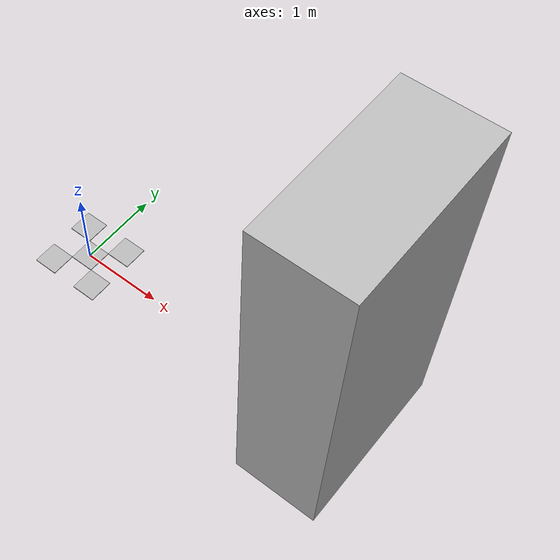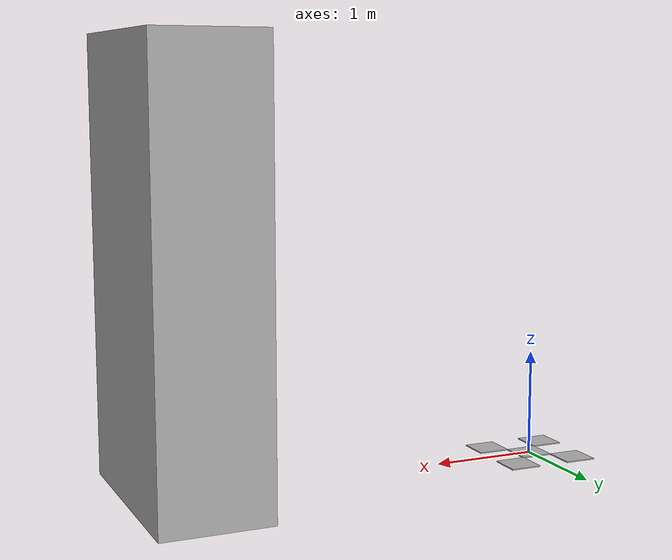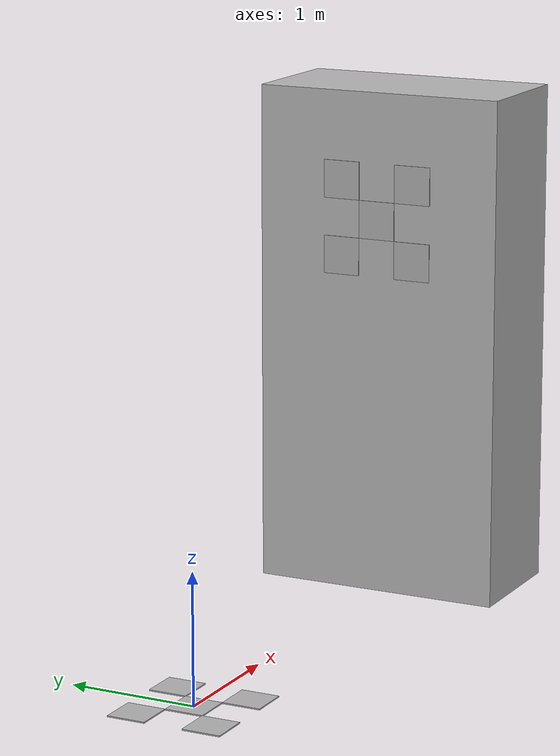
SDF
<?xml version="1.0" ?>
<sdf version="1.4">

	<model name='localization_tags'>

		<static>True</static>

		<link name="tag_0">

			<pose>0 0 0 0 1.5713 1.5713</pose>

			<inertial>
	        	<mass>0.1</mass>

	        	<inertia>
					<ixx>0.0166667</ixx>
					<ixy>0</ixy>
					<ixz>0</ixz>
					<iyy>0.0166667</iyy>
					<iyz>0</iyz>
					<izz>0.0166667</izz>
        		</inertia>

        		<pose frame=''>0 0 0 0 -0 0</pose>
      		</inertial>

			<pose frame=''>0 0 0 0 -0 0</pose>
			<gravity>1</gravity>
			<self_collide>0</self_collide>
			<kinematic>0</kinematic>
			<enable_wind>0</enable_wind>

			<visual name='visual_0'>
				<pose frame=''>0 0 0 0 -0 0</pose>

		        <geometry>
		        	<box>
		        	<size>0.01 0.3 0.3</size>
		        	</box>
		        </geometry>

		        <material>
		        	<lighting>0</lighting>

		        	<script>
		        		<uri>models://media/materials/scripts/Apriltag.material</uri>
		        		<name>Apriltag/id0</name>
		          	</script>

		        	<shader type='vertex'>
		        		<normal_map>__default__</normal_map>
		          	</shader>

		        	<ambient>0.3 0.3 0.3 1</ambient>
		        	<diffuse>0.7 0.7 0.7 1</diffuse>
		        	<specular>0.01 0.01 0.01 1</specular>
		        	<emissive>0 0 0 1</emissive>
		        </material>

		        <transparency>0</transparency>
		        <cast_shadows>1</cast_shadows>
			</visual>

			<collision name='collision_0'>
				<laser_retro>0</laser_retro>
        		<max_contacts>10</max_contacts>
        		<pose frame=''>0 0 0 0 -0 0</pose>

		        <geometry>
		        	<box>
		        		<size>0.01 0.3 0.3</size>
		        	</box>
		        </geometry>

		        <surface>
		        	<friction>
		            	<ode>
		            		<mu>1</mu>
		            		<mu2>1</mu2>
		            		<fdir1>0 0 0</fdir1>
		            		<slip1>0</slip1>
		            		<slip2>0</slip2>
		            	</ode>

		           		<torsional>
		            		<coefficient>1</coefficient>
	            			<patch_radius>0</patch_radius>
	            			<surface_radius>0</surface_radius>
	            			<use_patch_radius>1</use_patch_radius>

	            			<ode>
		                		<slip>0</slip>
		              		</ode>
		            	</torsional>
		          	</friction>

		        	<bounce>
		            	<restitution_coefficient>0</restitution_coefficient>
		            	<threshold>1e+06</threshold>
		        	</bounce>

		        	<contact>
		            	<collide_without_contact>0</collide_without_contact>
		            	<collide_without_contact_bitmask>1</collide_without_contact_bitmask>
		            	<collide_bitmask>1</collide_bitmask>

		            	<ode>
		            		<soft_cfm>0</soft_cfm>
		            		<soft_erp>0.2</soft_erp>
		            		<kp>1e+13</kp>
		            		<kd>1</kd>
		            		<max_vel>0.01</max_vel>
		            		<min_depth>0</min_depth>
		            	</ode>

			            <bullet>
			            	<split_impulse>1</split_impulse>
			            	<split_impulse_penetration_threshold>-0.01</split_impulse_penetration_threshold>
			            	<soft_cfm>0</soft_cfm>
			            	<soft_erp>0.2</soft_erp>
			            	<kp>1e+13</kp>
			            	<kd>1</kd>
			            </bullet>
		        	</contact>
		        </surface>
		    </collision>
		</link>

		<link name="tag_1">

			<pose>0.3 -0.3 0 0 1.5713 1.5713</pose>

			<inertial>
	        	<mass>0.1</mass>

	        	<inertia>
					<ixx>0.0166667</ixx>
					<ixy>0</ixy>
					<ixz>0</ixz>
					<iyy>0.0166667</iyy>
					<iyz>0</iyz>
					<izz>0.0166667</izz>
        		</inertia>

        		<pose frame=''>0 0 0 0 -0 0</pose>
      		</inertial>

			<pose frame=''>0 0 0 0 -0 0</pose>
			<gravity>1</gravity>
			<self_collide>0</self_collide>
			<kinematic>0</kinematic>
			<enable_wind>0</enable_wind>

 			<visual name='visual_1'>
				<pose frame=''>0 0 0 0 -0 0</pose>

		        <geometry>
		        	<box>
		        	<size>0.01 0.3 0.3</size>
		        	</box>
		        </geometry>

		        <material>
		        	<lighting>0</lighting>

		        	<script>
		        		<uri>models://media/materials/scripts/Apriltag.material</uri>
		        		<name>Apriltag/id1</name>
		          	</script>

		        	<shader type='vertex'>
		        		<normal_map>__default__</normal_map>
		          	</shader>

		        	<ambient>0.3 0.3 0.3 1</ambient>
		        	<diffuse>0.7 0.7 0.7 1</diffuse>
		        	<specular>0.01 0.01 0.01 1</specular>
		        	<emissive>0 0 0 1</emissive>
		        </material>

		        <transparency>0</transparency>
		        <cast_shadows>1</cast_shadows>
			</visual>

			<collision name='collision_1'>
				<laser_retro>0</laser_retro>
        		<max_contacts>10</max_contacts>
        		<pose frame=''>0 0 0 0 -0 0</pose>

		        <geometry>
		        	<box>
		        		<size>0.01 0.3 0.3</size>
		        	</box>
		        </geometry>

		        <surface>
		        	<friction>
		            	<ode>
		            		<mu>1</mu>
		            		<mu2>1</mu2>
		            		<fdir1>0 0 0</fdir1>
		            		<slip1>0</slip1>
		            		<slip2>0</slip2>
		            	</ode>

		           		<torsional>
		            		<coefficient>1</coefficient>
	            			<patch_radius>0</patch_radius>
	            			<surface_radius>0</surface_radius>
	            			<use_patch_radius>1</use_patch_radius>

	            			<ode>
		                		<slip>0</slip>
		              		</ode>
		            	</torsional>
		          	</friction>

		        	<bounce>
		            	<restitution_coefficient>0</restitution_coefficient>
		            	<threshold>1e+06</threshold>
		        	</bounce>

		        	<contact>
		            	<collide_without_contact>0</collide_without_contact>
		            	<collide_without_contact_bitmask>1</collide_without_contact_bitmask>
		            	<collide_bitmask>1</collide_bitmask>

		            	<ode>
		            		<soft_cfm>0</soft_cfm>
		            		<soft_erp>0.2</soft_erp>
		            		<kp>1e+13</kp>
		            		<kd>1</kd>
		            		<max_vel>0.01</max_vel>
		            		<min_depth>0</min_depth>
		            	</ode>

			            <bullet>
			            	<split_impulse>1</split_impulse>
			            	<split_impulse_penetration_threshold>-0.01</split_impulse_penetration_threshold>
			            	<soft_cfm>0</soft_cfm>
			            	<soft_erp>0.2</soft_erp>
			            	<kp>1e+13</kp>
			            	<kd>1</kd>
			            </bullet>
		        	</contact>
		        </surface>
		    </collision>
		</link>

		<link name="tag_2">

			<pose>0.3 0.3 0 0 1.5713 1.5713</pose>

			<inertial>
	        	<mass>0.1</mass>

	        	<inertia>
					<ixx>0.0166667</ixx>
					<ixy>0</ixy>
					<ixz>0</ixz>
					<iyy>0.0166667</iyy>
					<iyz>0</iyz>
					<izz>0.0166667</izz>
        		</inertia>

        		<pose frame=''>0 0 0 0 -0 0</pose>
      		</inertial>

			<pose frame=''>0 0 0 0 -0 0</pose>
			<gravity>1</gravity>
			<self_collide>0</self_collide>
			<kinematic>0</kinematic>
			<enable_wind>0</enable_wind>

			<visual name='visual_2'>
				<pose frame=''>0 0 0 0 -0 0</pose>

		        <geometry>
		        	<box>
		        	<size>0.01 0.3 0.3</size>
		        	</box>
		        </geometry>

		        <material>
		        	<lighting>0</lighting>

		        	<script>
		        		<uri>models://media/materials/scripts/Apriltag.material</uri>
		        		<name>Apriltag/id2</name>
		          	</script>

		        	<shader type='vertex'>
		        		<normal_map>__default__</normal_map>
		          	</shader>

		        	<ambient>0.3 0.3 0.3 1</ambient>
		        	<diffuse>0.7 0.7 0.7 1</diffuse>
		        	<specular>0.01 0.01 0.01 1</specular>
		        	<emissive>0 0 0 1</emissive>
		        </material>

		        <transparency>0</transparency>
		        <cast_shadows>1</cast_shadows>
			</visual>

			<collision name='collision_2'>
				<laser_retro>0</laser_retro>
        		<max_contacts>10</max_contacts>
        		<pose frame=''>0 0 0 0 -0 0</pose>

		        <geometry>
		        	<box>
		        		<size>0.01 0.3 0.3</size>
		        	</box>
		        </geometry>

		        <surface>
		        	<friction>
		            	<ode>
		            		<mu>1</mu>
		            		<mu2>1</mu2>
		            		<fdir1>0 0 0</fdir1>
		            		<slip1>0</slip1>
		            		<slip2>0</slip2>
		            	</ode>

		           		<torsional>
		            		<coefficient>1</coefficient>
	            			<patch_radius>0</patch_radius>
	            			<surface_radius>0</surface_radius>
	            			<use_patch_radius>1</use_patch_radius>

	            			<ode>
		                		<slip>0</slip>
		              		</ode>
		            	</torsional>
		          	</friction>

		        	<bounce>
		            	<restitution_coefficient>0</restitution_coefficient>
		            	<threshold>1e+06</threshold>
		        	</bounce>

		        	<contact>
		            	<collide_without_contact>0</collide_without_contact>
		            	<collide_without_contact_bitmask>1</collide_without_contact_bitmask>
		            	<collide_bitmask>1</collide_bitmask>

		            	<ode>
		            		<soft_cfm>0</soft_cfm>
		            		<soft_erp>0.2</soft_erp>
		            		<kp>1e+13</kp>
		            		<kd>1</kd>
		            		<max_vel>0.01</max_vel>
		            		<min_depth>0</min_depth>
		            	</ode>

			            <bullet>
			            	<split_impulse>1</split_impulse>
			            	<split_impulse_penetration_threshold>-0.01</split_impulse_penetration_threshold>
			            	<soft_cfm>0</soft_cfm>
			            	<soft_erp>0.2</soft_erp>
			            	<kp>1e+13</kp>
			            	<kd>1</kd>
			            </bullet>
		        	</contact>
		        </surface>
		    </collision>
		</link>

		<link name="tag_3">

			<pose>-0.3 0.3 0 0 1.5713 1.5713</pose>

			<inertial>
	        	<mass>0.1</mass>

	        	<inertia>
					<ixx>0.0166667</ixx>
					<ixy>0</ixy>
					<ixz>0</ixz>
					<iyy>0.0166667</iyy>
					<iyz>0</iyz>
					<izz>0.0166667</izz>
        		</inertia>

        		<pose frame=''>0 0 0 0 -0 0</pose>
      		</inertial>

			<pose frame=''>0 0 0 0 -0 0</pose>
			<gravity>1</gravity>
			<self_collide>0</self_collide>
			<kinematic>0</kinematic>
			<enable_wind>0</enable_wind>

			<visual name='visual_3'>
				<pose frame=''>0 0 0 0 -0 0</pose>

		        <geometry>
		        	<box>
		        	<size>0.01 0.3 0.3</size>
		        	</box>
		        </geometry>

		        <material>
		        	<lighting>0</lighting>

		        	<script>
		        		<uri>models://media/materials/scripts/Apriltag.material</uri>
		        		<name>Apriltag/id3</name>
		          	</script>

		        	<shader type='vertex'>
		        		<normal_map>__default__</normal_map>
		          	</shader>

		        	<ambient>0.3 0.3 0.3 1</ambient>
		        	<diffuse>0.7 0.7 0.7 1</diffuse>
		        	<specular>0.01 0.01 0.01 1</specular>
		        	<emissive>0 0 0 1</emissive>
		        </material>

		        <transparency>0</transparency>
		        <cast_shadows>1</cast_shadows>
			</visual>

			<collision name='collision_3'>
				<laser_retro>0</laser_retro>
        		<max_contacts>10</max_contacts>
        		<pose frame=''>0 0 0 0 -0 0</pose>

		        <geometry>
		        	<box>
		        		<size>0.01 0.3 0.3</size>
		        	</box>
		        </geometry>

		        <surface>
		        	<friction>
		            	<ode>
		            		<mu>1</mu>
		            		<mu2>1</mu2>
		            		<fdir1>0 0 0</fdir1>
		            		<slip1>0</slip1>
		            		<slip2>0</slip2>
		            	</ode>

		           		<torsional>
		            		<coefficient>1</coefficient>
	            			<patch_radius>0</patch_radius>
	            			<surface_radius>0</surface_radius>
	            			<use_patch_radius>1</use_patch_radius>

	            			<ode>
		                		<slip>0</slip>
		              		</ode>
		            	</torsional>
		          	</friction>

		        	<bounce>
		            	<restitution_coefficient>0</restitution_coefficient>
		            	<threshold>1e+06</threshold>
		        	</bounce>

		        	<contact>
		            	<collide_without_contact>0</collide_without_contact>
		            	<collide_without_contact_bitmask>1</collide_without_contact_bitmask>
		            	<collide_bitmask>1</collide_bitmask>

		            	<ode>
		            		<soft_cfm>0</soft_cfm>
		            		<soft_erp>0.2</soft_erp>
		            		<kp>1e+13</kp>
		            		<kd>1</kd>
		            		<max_vel>0.01</max_vel>
		            		<min_depth>0</min_depth>
		            	</ode>

			            <bullet>
			            	<split_impulse>1</split_impulse>
			            	<split_impulse_penetration_threshold>-0.01</split_impulse_penetration_threshold>
			            	<soft_cfm>0</soft_cfm>
			            	<soft_erp>0.2</soft_erp>
			            	<kp>1e+13</kp>
			            	<kd>1</kd>
			            </bullet>
		        	</contact>
		        </surface>
		    </collision>
		</link>

		<link name="tag_4">

			<pose>-0.3 -0.3 0 0 1.5713 1.5713</pose>

			<inertial>
	        	<mass>0.1</mass>

	        	<inertia>
					<ixx>0.0166667</ixx>
					<ixy>0</ixy>
					<ixz>0</ixz>
					<iyy>0.0166667</iyy>
					<iyz>0</iyz>
					<izz>0.0166667</izz>
        		</inertia>

        		<pose frame=''>0 0 0 0 -0 0</pose>
      		</inertial>

			<pose frame=''>0 0 0 0 -0 0</pose>
			<gravity>1</gravity>
			<self_collide>0</self_collide>
			<kinematic>0</kinematic>
			<enable_wind>0</enable_wind>

			<visual name='visual_4'>
				<pose frame=''>0 0 0 0 -0 0</pose>

		        <geometry>
		        	<box>
		        	<size>0.01 0.3 0.3</size>
		        	</box>
		        </geometry>

		        <material>
		        	<lighting>0</lighting>

		        	<script>
		        		<uri>models://media/materials/scripts/Apriltag.material</uri>
		        		<name>Apriltag/id4</name>
		          	</script>

		        	<shader type='vertex'>
		        		<normal_map>__default__</normal_map>
		          	</shader>

		        	<ambient>0.3 0.3 0.3 1</ambient>
		        	<diffuse>0.7 0.7 0.7 1</diffuse>
		        	<specular>0.01 0.01 0.01 1</specular>
		        	<emissive>0 0 0 1</emissive>
		        </material>

		        <transparency>0</transparency>
		        <cast_shadows>1</cast_shadows>
			</visual>

			<collision name='collision_4'>
				<laser_retro>0</laser_retro>
        		<max_contacts>10</max_contacts>
        		<pose frame=''>0 0 0 0 -0 0</pose>

		        <geometry>
		        	<box>
		        		<size>0.01 0.3 0.3</size>
		        	</box>
		        </geometry>

		        <surface>
		        	<friction>
		            	<ode>
		            		<mu>1</mu>
		            		<mu2>1</mu2>
		            		<fdir1>0 0 0</fdir1>
		            		<slip1>0</slip1>
		            		<slip2>0</slip2>
		            	</ode>

		           		<torsional>
		            		<coefficient>1</coefficient>
	            			<patch_radius>0</patch_radius>
	            			<surface_radius>0</surface_radius>
	            			<use_patch_radius>1</use_patch_radius>

	            			<ode>
		                		<slip>0</slip>
		              		</ode>
		            	</torsional>
		          	</friction>

		        	<bounce>
		            	<restitution_coefficient>0</restitution_coefficient>
		            	<threshold>1e+06</threshold>
		        	</bounce>

		        	<contact>
		            	<collide_without_contact>0</collide_without_contact>
		            	<collide_without_contact_bitmask>1</collide_without_contact_bitmask>
		            	<collide_bitmask>1</collide_bitmask>

		            	<ode>
		            		<soft_cfm>0</soft_cfm>
		            		<soft_erp>0.2</soft_erp>
		            		<kp>1e+13</kp>
		            		<kd>1</kd>
		            		<max_vel>0.01</max_vel>
		            		<min_depth>0</min_depth>
		            	</ode>

			            <bullet>
			            	<split_impulse>1</split_impulse>
			            	<split_impulse_penetration_threshold>-0.01</split_impulse_penetration_threshold>
			            	<soft_cfm>0</soft_cfm>
			            	<soft_erp>0.2</soft_erp>
			            	<kp>1e+13</kp>
			            	<kd>1</kd>
			            </bullet>
		        	</contact>
		        </surface>
		    </collision>
		</link>

		<link name="tag_5">

			<pose>3 0 3 -1.5713 0 0</pose>

			<inertial>
	        	<mass>0.1</mass>

	        	<inertia>
					<ixx>0.0166667</ixx>
					<ixy>0</ixy>
					<ixz>0</ixz>
					<iyy>0.0166667</iyy>
					<iyz>0</iyz>
					<izz>0.0166667</izz>
        		</inertia>

        		<pose frame=''>0 0 0 0 -0 0</pose>
      		</inertial>

			<pose frame=''>0 0 0 0 -0 0</pose>
			<gravity>1</gravity>
			<self_collide>0</self_collide>
			<kinematic>0</kinematic>
			<enable_wind>0</enable_wind>

			<visual name='visual_5'>
				<pose frame=''>0 0 0 0 -0 0</pose>

		        <geometry>
		        	<box>
		        	<size>0.01 0.3 0.3</size>
		        	</box>
		        </geometry>

		        <material>
		        	<lighting>0</lighting>

		        	<script>
		        		<uri>models://media/materials/scripts/Apriltag.material</uri>
		        		<name>Apriltag/id5</name>
		          	</script>

		        	<shader type='vertex'>
		        		<normal_map>__default__</normal_map>
		          	</shader>

		        	<ambient>0.3 0.3 0.3 1</ambient>
		        	<diffuse>0.7 0.7 0.7 1</diffuse>
		        	<specular>0.01 0.01 0.01 1</specular>
		        	<emissive>0 0 0 1</emissive>
		        </material>

		        <transparency>0</transparency>
		        <cast_shadows>1</cast_shadows>
			</visual>

			<collision name='collision_5'>
				<laser_retro>0</laser_retro>
        		<max_contacts>10</max_contacts>
        		<pose frame=''>0 0 0 0 -0 0</pose>

		        <geometry>
		        	<box>
		        		<size>0.01 0.3 0.3</size>
		        	</box>
		        </geometry>

		        <surface>
		        	<friction>
		            	<ode>
		            		<mu>1</mu>
		            		<mu2>1</mu2>
		            		<fdir1>0 0 0</fdir1>
		            		<slip1>0</slip1>
		            		<slip2>0</slip2>
		            	</ode>

		           		<torsional>
		            		<coefficient>1</coefficient>
	            			<patch_radius>0</patch_radius>
	            			<surface_radius>0</surface_radius>
	            			<use_patch_radius>1</use_patch_radius>

	            			<ode>
		                		<slip>0</slip>
		              		</ode>
		            	</torsional>
		          	</friction>

		        	<bounce>
		            	<restitution_coefficient>0</restitution_coefficient>
		            	<threshold>1e+06</threshold>
		        	</bounce>

		        	<contact>
		            	<collide_without_contact>0</collide_without_contact>
		            	<collide_without_contact_bitmask>1</collide_without_contact_bitmask>
		            	<collide_bitmask>1</collide_bitmask>

		            	<ode>
		            		<soft_cfm>0</soft_cfm>
		            		<soft_erp>0.2</soft_erp>
		            		<kp>1e+13</kp>
		            		<kd>1</kd>
		            		<max_vel>0.01</max_vel>
		            		<min_depth>0</min_depth>
		            	</ode>

			            <bullet>
			            	<split_impulse>1</split_impulse>
			            	<split_impulse_penetration_threshold>-0.01</split_impulse_penetration_threshold>
			            	<soft_cfm>0</soft_cfm>
			            	<soft_erp>0.2</soft_erp>
			            	<kp>1e+13</kp>
			            	<kd>1</kd>
			            </bullet>
		        	</contact>
		        </surface>
		    </collision>
		</link>
 -->
		<link name="tag_6">

			<pose>3 -0.3 3.3 -1.5713 0 0</pose>

			<inertial>
	        	<mass>0.1</mass>

	        	<inertia>
					<ixx>0.0166667</ixx>
					<ixy>0</ixy>
					<ixz>0</ixz>
					<iyy>0.0166667</iyy>
					<iyz>0</iyz>
					<izz>0.0166667</izz>
        		</inertia>

        		<pose frame=''>0 0 0 0 -0 0</pose>
      		</inertial>

			<pose frame=''>0 0 0 0 -0 0</pose>
			<gravity>1</gravity>
			<self_collide>0</self_collide>
			<kinematic>0</kinematic>
			<enable_wind>0</enable_wind>

			<visual name='visual_6'>
				<pose frame=''>0 0 0 0 -0 0</pose>

		        <geometry>
		        	<box>
		        	<size>0.01 0.3 0.3</size>
		        	</box>
		        </geometry>

		        <material>
		        	<lighting>0</lighting>

		        	<script>
		        		<uri>models://media/materials/scripts/Apriltag.material</uri>
		        		<name>Apriltag/id6</name>
		          	</script>

		        	<shader type='vertex'>
		        		<normal_map>__default__</normal_map>
		          	</shader>

		        	<ambient>0.3 0.3 0.3 1</ambient>
		        	<diffuse>0.7 0.7 0.7 1</diffuse>
		        	<specular>0.01 0.01 0.01 1</specular>
		        	<emissive>0 0 0 1</emissive>
		        </material>

		        <transparency>0</transparency>
		        <cast_shadows>1</cast_shadows>
			</visual>

			<collision name='collision_6'>
				<laser_retro>0</laser_retro>
        		<max_contacts>10</max_contacts>
        		<pose frame=''>0 0 0 0 -0 0</pose>

		        <geometry>
		        	<box>
		        		<size>0.01 0.3 0.3</size>
		        	</box>
		        </geometry>

		        <surface>
		        	<friction>
		            	<ode>
		            		<mu>1</mu>
		            		<mu2>1</mu2>
		            		<fdir1>0 0 0</fdir1>
		            		<slip1>0</slip1>
		            		<slip2>0</slip2>
		            	</ode>

		           		<torsional>
		            		<coefficient>1</coefficient>
	            			<patch_radius>0</patch_radius>
	            			<surface_radius>0</surface_radius>
	            			<use_patch_radius>1</use_patch_radius>

	            			<ode>
		                		<slip>0</slip>
		              		</ode>
		            	</torsional>
		          	</friction>

		        	<bounce>
		            	<restitution_coefficient>0</restitution_coefficient>
		            	<threshold>1e+06</threshold>
		        	</bounce>

		        	<contact>
		            	<collide_without_contact>0</collide_without_contact>
		            	<collide_without_contact_bitmask>1</collide_without_contact_bitmask>
		            	<collide_bitmask>1</collide_bitmask>

		            	<ode>
		            		<soft_cfm>0</soft_cfm>
		            		<soft_erp>0.2</soft_erp>
		            		<kp>1e+13</kp>
		            		<kd>1</kd>
		            		<max_vel>0.01</max_vel>
		            		<min_depth>0</min_depth>
		            	</ode>

			            <bullet>
			            	<split_impulse>1</split_impulse>
			            	<split_impulse_penetration_threshold>-0.01</split_impulse_penetration_threshold>
			            	<soft_cfm>0</soft_cfm>
			            	<soft_erp>0.2</soft_erp>
			            	<kp>1e+13</kp>
			            	<kd>1</kd>
			            </bullet>
		        	</contact>
		        </surface>
		    </collision>
		</link>

		<link name="tag_7">

			<pose>3 0.3 3.3 -1.5713 0 0</pose>

			<inertial>
	        	<mass>0.1</mass>

	        	<inertia>
					<ixx>0.0166667</ixx>
					<ixy>0</ixy>
					<ixz>0</ixz>
					<iyy>0.0166667</iyy>
					<iyz>0</iyz>
					<izz>0.0166667</izz>
        		</inertia>

        		<pose frame=''>0 0 0 0 -0 0</pose>
      		</inertial>

			<pose frame=''>0 0 0 0 -0 0</pose>
			<gravity>1</gravity>
			<self_collide>0</self_collide>
			<kinematic>0</kinematic>
			<enable_wind>0</enable_wind>

			<visual name='visual_7'>
				<pose frame=''>0 0 0 0 -0 0</pose>

		        <geometry>
		        	<box>
		        	<size>0.01 0.3 0.3</size>
		        	</box>
		        </geometry>

		        <material>
		        	<lighting>0</lighting>

		        	<script>
		        		<uri>models://media/materials/scripts/Apriltag.material</uri>
		        		<name>Apriltag/id7</name>
		          	</script>

		        	<shader type='vertex'>
		        		<normal_map>__default__</normal_map>
		          	</shader>

		        	<ambient>0.3 0.3 0.3 1</ambient>
		        	<diffuse>0.7 0.7 0.7 1</diffuse>
		        	<specular>0.01 0.01 0.01 1</specular>
		        	<emissive>0 0 0 1</emissive>
		        </material>

		        <transparency>0</transparency>
		        <cast_shadows>1</cast_shadows>
			</visual>

			<collision name='collision_7'>
				<laser_retro>0</laser_retro>
        		<max_contacts>10</max_contacts>
        		<pose frame=''>0 0 0 0 -0 0</pose>

		        <geometry>
		        	<box>
		        		<size>0.01 0.3 0.3</size>
		        	</box>
		        </geometry>

		        <surface>
		        	<friction>
		            	<ode>
		            		<mu>1</mu>
		            		<mu2>1</mu2>
		            		<fdir1>0 0 0</fdir1>
		            		<slip1>0</slip1>
		            		<slip2>0</slip2>
		            	</ode>

		           		<torsional>
		            		<coefficient>1</coefficient>
	            			<patch_radius>0</patch_radius>
	            			<surface_radius>0</surface_radius>
	            			<use_patch_radius>1</use_patch_radius>

	            			<ode>
		                		<slip>0</slip>
		              		</ode>
		            	</torsional>
		          	</friction>

		        	<bounce>
		            	<restitution_coefficient>0</restitution_coefficient>
		            	<threshold>1e+06</threshold>
		        	</bounce>

		        	<contact>
		            	<collide_without_contact>0</collide_without_contact>
		            	<collide_without_contact_bitmask>1</collide_without_contact_bitmask>
		            	<collide_bitmask>1</collide_bitmask>

		            	<ode>
		            		<soft_cfm>0</soft_cfm>
		            		<soft_erp>0.2</soft_erp>
		            		<kp>1e+13</kp>
		            		<kd>1</kd>
		            		<max_vel>0.01</max_vel>
		            		<min_depth>0</min_depth>
		            	</ode>

			            <bullet>
			            	<split_impulse>1</split_impulse>
			            	<split_impulse_penetration_threshold>-0.01</split_impulse_penetration_threshold>
			            	<soft_cfm>0</soft_cfm>
			            	<soft_erp>0.2</soft_erp>
			            	<kp>1e+13</kp>
			            	<kd>1</kd>
			            </bullet>
		        	</contact>
		        </surface>
		    </collision>
		</link>

		<link name="tag_8">

			<pose>3 0.3 2.7 -1.5713 0 0</pose>

			<inertial>
	        	<mass>0.1</mass>

	        	<inertia>
					<ixx>0.0166667</ixx>
					<ixy>0</ixy>
					<ixz>0</ixz>
					<iyy>0.0166667</iyy>
					<iyz>0</iyz>
					<izz>0.0166667</izz>
        		</inertia>

        		<pose frame=''>0 0 0 0 -0 0</pose>
      		</inertial>

			<pose frame=''>0 0 0 0 -0 0</pose>
			<gravity>1</gravity>
			<self_collide>0</self_collide>
			<kinematic>0</kinematic>
			<enable_wind>0</enable_wind>

			<visual name='visual_8'>
				<pose frame=''>0 0 0 0 -0 0</pose>

		        <geometry>
		        	<box>
		        	<size>0.01 0.3 0.3</size>
		        	</box>
		        </geometry>

		        <material>
		        	<lighting>0</lighting>

		        	<script>
		        		<uri>models://media/materials/scripts/Apriltag.material</uri>
		        		<name>Apriltag/id8</name>
		          	</script>

		        	<shader type='vertex'>
		        		<normal_map>__default__</normal_map>
		          	</shader>

		        	<ambient>0.3 0.3 0.3 1</ambient>
		        	<diffuse>0.7 0.7 0.7 1</diffuse>
		        	<specular>0.01 0.01 0.01 1</specular>
		        	<emissive>0 0 0 1</emissive>
		        </material>

		        <transparency>0</transparency>
		        <cast_shadows>1</cast_shadows>
			</visual>

			<collision name='collision_8'>
				<laser_retro>0</laser_retro>
        		<max_contacts>10</max_contacts>
        		<pose frame=''>0 0 0 0 -0 0</pose>

		        <geometry>
		        	<box>
		        		<size>0.01 0.3 0.3</size>
		        	</box>
		        </geometry>

		        <surface>
		        	<friction>
		            	<ode>
		            		<mu>1</mu>
		            		<mu2>1</mu2>
		            		<fdir1>0 0 0</fdir1>
		            		<slip1>0</slip1>
		            		<slip2>0</slip2>
		            	</ode>

		           		<torsional>
		            		<coefficient>1</coefficient>
	            			<patch_radius>0</patch_radius>
	            			<surface_radius>0</surface_radius>
	            			<use_patch_radius>1</use_patch_radius>

	            			<ode>
		                		<slip>0</slip>
		              		</ode>
		            	</torsional>
		          	</friction>

		        	<bounce>
		            	<restitution_coefficient>0</restitution_coefficient>
		            	<threshold>1e+06</threshold>
		        	</bounce>

		        	<contact>
		            	<collide_without_contact>0</collide_without_contact>
		            	<collide_without_contact_bitmask>1</collide_without_contact_bitmask>
		            	<collide_bitmask>1</collide_bitmask>

		            	<ode>
		            		<soft_cfm>0</soft_cfm>
		            		<soft_erp>0.2</soft_erp>
		            		<kp>1e+13</kp>
		            		<kd>1</kd>
		            		<max_vel>0.01</max_vel>
		            		<min_depth>0</min_depth>
		            	</ode>

			            <bullet>
			            	<split_impulse>1</split_impulse>
			            	<split_impulse_penetration_threshold>-0.01</split_impulse_penetration_threshold>
			            	<soft_cfm>0</soft_cfm>
			            	<soft_erp>0.2</soft_erp>
			            	<kp>1e+13</kp>
			            	<kd>1</kd>
			            </bullet>
		        	</contact>
		        </surface>
		    </collision>
		</link>

		<link name="tag_9">

			<pose>3 -0.3 2.7 -1.5713 0 0</pose>

			<inertial>
	        	<mass>0.1</mass>

	        	<inertia>
					<ixx>0.0166667</ixx>
					<ixy>0</ixy>
					<ixz>0</ixz>
					<iyy>0.0166667</iyy>
					<iyz>0</iyz>
					<izz>0.0166667</izz>
        		</inertia>

        		<pose frame=''>0 0 0 0 -0 0</pose>
      		</inertial>

			<pose frame=''>0 0 0 0 -0 0</pose>
			<gravity>1</gravity>
			<self_collide>0</self_collide>
			<kinematic>0</kinematic>
			<enable_wind>0</enable_wind>

			<visual name='visual_9'>
				<pose frame=''>0 0 0 0 -0 0</pose>

		        <geometry>
		        	<box>
		        	<size>0.01 0.3 0.3</size>
		        	</box>
		        </geometry>

		        <material>
		        	<lighting>0</lighting>

		        	<script>
		        		<uri>models://media/materials/scripts/Apriltag.material</uri>
		        		<name>Apriltag/id9</name>
		          	</script>

		        	<shader type='vertex'>
		        		<normal_map>__default__</normal_map>
		          	</shader>

		        	<ambient>0.3 0.3 0.3 1</ambient>
		        	<diffuse>0.7 0.7 0.7 1</diffuse>
		        	<specular>0.01 0.01 0.01 1</specular>
		        	<emissive>0 0 0 1</emissive>
		        </material>

		        <transparency>0</transparency>
		        <cast_shadows>1</cast_shadows>
			</visual>

			<collision name='collision_9'>
				<laser_retro>0</laser_retro>
        		<max_contacts>10</max_contacts>
        		<pose frame=''>0 0 0 0 -0 0</pose>

		        <geometry>
		        	<box>
		        		<size>0.01 0.3 0.3</size>
		        	</box>
		        </geometry>

		        <surface>
		        	<friction>
		            	<ode>
		            		<mu>1</mu>
		            		<mu2>1</mu2>
		            		<fdir1>0 0 0</fdir1>
		            		<slip1>0</slip1>
		            		<slip2>0</slip2>
		            	</ode>

		           		<torsional>
		            		<coefficient>1</coefficient>
	            			<patch_radius>0</patch_radius>
	            			<surface_radius>0</surface_radius>
	            			<use_patch_radius>1</use_patch_radius>

	            			<ode>
		                		<slip>0</slip>
		              		</ode>
		            	</torsional>
		          	</friction>

		        	<bounce>
		            	<restitution_coefficient>0</restitution_coefficient>
		            	<threshold>1e+06</threshold>
		        	</bounce>

		        	<contact>
		            	<collide_without_contact>0</collide_without_contact>
		            	<collide_without_contact_bitmask>1</collide_without_contact_bitmask>
		            	<collide_bitmask>1</collide_bitmask>

		            	<ode>
		            		<soft_cfm>0</soft_cfm>
		            		<soft_erp>0.2</soft_erp>
		            		<kp>1e+13</kp>
		            		<kd>1</kd>
		            		<max_vel>0.01</max_vel>
		            		<min_depth>0</min_depth>
		            	</ode>

			            <bullet>
			            	<split_impulse>1</split_impulse>
			            	<split_impulse_penetration_threshold>-0.01</split_impulse_penetration_threshold>
			            	<soft_cfm>0</soft_cfm>
			            	<soft_erp>0.2</soft_erp>
			            	<kp>1e+13</kp>
			            	<kd>1</kd>
			            </bullet>
		        	</contact>
		        </surface>
		    </collision>
		</link>

		<link name="wall_1">

			<pose>3.5 0 2 0 0 0</pose>

			<inertial>
		      <mass value="0.0001" />
		      <inertia ixx="0.0001" ixy="0.0001" ixz="0.0001" iyy="0.0001" iyz="0.0001" izz="0.0001" />
		    </inertial>

			<visual name='visual_w'>
				<geometry>
					<box>
						<size>1 2 4</size>
					</box>
				</geometry>

			</visual>

			<collision name='collision_w'>
				<geometry>
					<box>
						<size>1 2 4</size>
					</box>
				</geometry>
		    </collision>

		</link>

		<joint name = "joint_5" type="fixed">
			<axis xyz="0 0 0" />
			<parent link="wall_1" />
			<child link="tag_5" />
	    </joint>

	    <joint name = "joint_6" type="fixed">
			<axis xyz="0 0 0" />
			<parent link="wall_1" />
			<child link="tag_6" />
	    </joint>

	    <joint name = "joint_7" type="fixed">
			<axis xyz="0 0 0" />
			<parent link="wall_1" />
			<child link="tag_7" />
	    </joint>

	    <joint name = "joint_8" type="fixed">
			<axis xyz="0 0 0" />
			<parent link="wall_1" />
			<child link="tag_8" />
	    </joint>

	    <joint name = "joint_9" type="fixed">
			<axis xyz="0 0 0" />
			<parent link="wall_1" />
			<child link="tag_9" />
	    </joint>

	</model>
</sdf>
